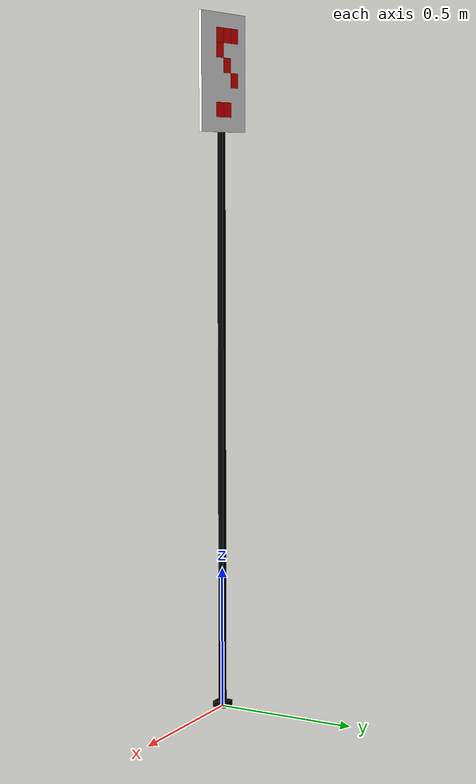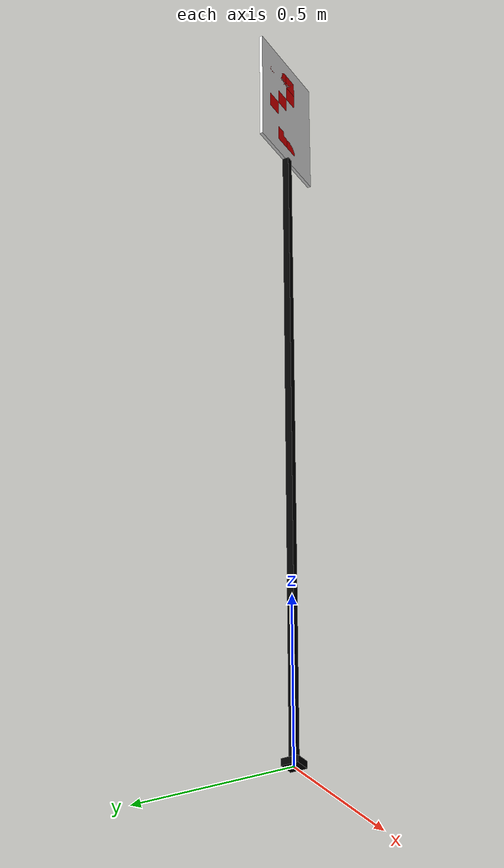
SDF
<?xml version="1.0"?>
<sdf version="1.6">
  <model name="marker_003">
    <static>true</static>

      <link name="base">
        <visual name="visual">
          <geometry><box><size>0.05 0.05 0.02</size></box></geometry>
          <material><diffuse>0 0 0 1</diffuse></material>
        </visual>
        <collision name="collision">
          <geometry><box><size>0.05 0.05 0.02</size></box></geometry>
        </collision>
        <pose>0 0 0.01 0 0 0</pose>
      </link>

      <link name="rod">
        <visual name="visual">
          <geometry><box><size>0.02 0.02 2.0</size></box></geometry>
          <material><diffuse>0 0 0 1</diffuse></material>
        </visual>
        <collision name="collision">
          <geometry><box><size>0.02 0.02 2.0</size></box></geometry>
        </collision>
        <pose>0 0 1.02 0 0 0</pose>
      </link>

      <link name="panel">
        <visual name="visual">
          <geometry><box><size>0.3 0.01 0.4</size></box></geometry>
          <material><diffuse>1 1 1 1</diffuse></material>
        </visual>
        <collision name="collision">
          <geometry><box><size>0.3 0.01 0.4</size></box></geometry>
        </collision>
        <pose>0 0.005 2.22 0 0 0</pose>
      </link>

      <link name="cell_5_3">
        <visual name="visual">
          <geometry><box><size>0.05 0.0105 0.05</size></box></geometry>
          <material><diffuse>1 0 0 1</diffuse></material>
        </visual>
        <collision name="collision">
          <geometry><box><size>0.05 0.0105 0.05</size></box></geometry>
        </collision>
        <pose>0.025000000000000022 0.00525 2.295 0 0 0</pose>
      </link>

      <link name="cell_6_3">
        <visual name="visual">
          <geometry><box><size>0.05 0.0105 0.05</size></box></geometry>
          <material><diffuse>1 0 0 1</diffuse></material>
        </visual>
        <collision name="collision">
          <geometry><box><size>0.05 0.0105 0.05</size></box></geometry>
        </collision>
        <pose>0.025000000000000022 0.00525 2.3449999999999998 0 0 0</pose>
      </link>

      <link name="cell_3_1">
        <visual name="visual">
          <geometry><box><size>0.05 0.0105 0.05</size></box></geometry>
          <material><diffuse>1 0 0 1</diffuse></material>
        </visual>
        <collision name="collision">
          <geometry><box><size>0.05 0.0105 0.05</size></box></geometry>
        </collision>
        <pose>-0.075 0.00525 2.195 0 0 0</pose>
      </link>

      <link name="cell_1_3">
        <visual name="visual">
          <geometry><box><size>0.05 0.0105 0.05</size></box></geometry>
          <material><diffuse>1 0 0 1</diffuse></material>
        </visual>
        <collision name="collision">
          <geometry><box><size>0.05 0.0105 0.05</size></box></geometry>
        </collision>
        <pose>0.025000000000000022 0.00525 2.0949999999999998 0 0 0</pose>
      </link>

      <link name="cell_6_1">
        <visual name="visual">
          <geometry><box><size>0.05 0.0105 0.05</size></box></geometry>
          <material><diffuse>1 0 0 1</diffuse></material>
        </visual>
        <collision name="collision">
          <geometry><box><size>0.05 0.0105 0.05</size></box></geometry>
        </collision>
        <pose>-0.075 0.00525 2.3449999999999998 0 0 0</pose>
      </link>

      <link name="cell_4_2">
        <visual name="visual">
          <geometry><box><size>0.05 0.0105 0.05</size></box></geometry>
          <material><diffuse>1 0 0 1</diffuse></material>
        </visual>
        <collision name="collision">
          <geometry><box><size>0.05 0.0105 0.05</size></box></geometry>
        </collision>
        <pose>-0.024999999999999994 0.00525 2.245 0 0 0</pose>
      </link>

      <link name="cell_6_2">
        <visual name="visual">
          <geometry><box><size>0.05 0.0105 0.05</size></box></geometry>
          <material><diffuse>1 0 0 1</diffuse></material>
        </visual>
        <collision name="collision">
          <geometry><box><size>0.05 0.0105 0.05</size></box></geometry>
        </collision>
        <pose>-0.024999999999999994 0.00525 2.3449999999999998 0 0 0</pose>
      </link>

      <link name="cell_1_2">
        <visual name="visual">
          <geometry><box><size>0.05 0.0105 0.05</size></box></geometry>
          <material><diffuse>1 0 0 1</diffuse></material>
        </visual>
        <collision name="collision">
          <geometry><box><size>0.05 0.0105 0.05</size></box></geometry>
        </collision>
        <pose>-0.024999999999999994 0.00525 2.0949999999999998 0 0 0</pose>
      </link>
  </model>
</sdf>
